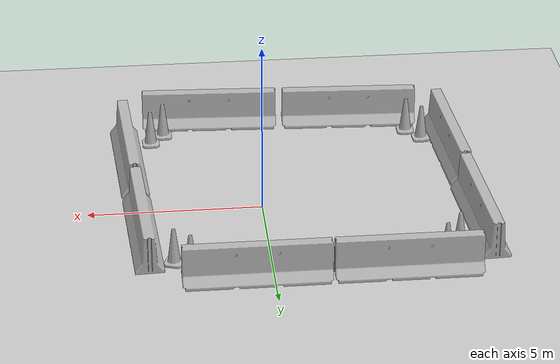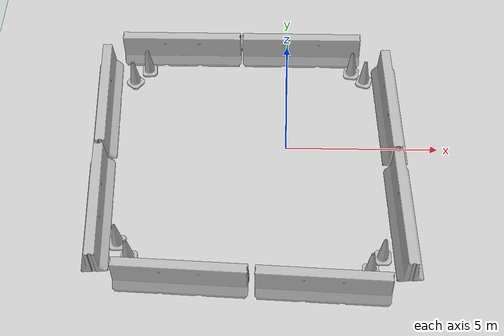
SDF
<sdf version="1.7">
 <world name="default">
  <light name="sun" type="directional">
   <pose>0 0 10 0 -0 0</pose>
   <diffuse>0.8 0.8 0.8 1</diffuse>
   <specular>0.2 0.2 0.2 1</specular>
   <attenuation>
    <range>1000</range>
    <constant>0.9</constant>
    <linear>0.01</linear>
    <quadratic>0.001</quadratic>
   </attenuation>
   <direction>-0.5 0.1 -0.9</direction>
   <spot><inner_angle>0</inner_angle><outer_angle>0</outer_angle><falloff>0</falloff></spot>
  </light>
  <model name="ground_plane">
   <static>1</static>
   <link name="link">
    <collision name="collision">
     <geometry><plane><normal>0 0 1</normal><size>100 100</size></plane></geometry>
     <surface><friction><ode><mu>100</mu><mu2>50</mu2></ode></friction></surface>
    </collision>
    <visual name="visual">
     <cast_shadows>0</cast_shadows>
     <geometry><plane><normal>0 0 1</normal><size>100 100</size></plane></geometry>
     <material>
      <script><uri>file://media/materials/scripts/gazebo.material</uri><name>Gazebo/Grey</name></script>
     </material>
    </visual>
   </link>
  </model>
  <gravity>0 0 -9.8</gravity>
  <magnetic_field>6e-06 2.3e-05 -4.2e-05</magnetic_field>
  <atmosphere type="adiabatic"/>
  <physics type="ode">
   <max_step_size>0.001</max_step_size>
   <real_time_factor>1</real_time_factor>
   <real_time_update_rate>1000</real_time_update_rate>
  </physics>
  <scene><ambient>0.4 0.4 0.4 1</ambient><background>0.7 0.7 0.7 1</background><shadows>1</shadows></scene>
  <spherical_coordinates>
   <surface_model>EARTH_WGS84</surface_model>
   <latitude_deg>0</latitude_deg>
   <longitude_deg>0</longitude_deg>
   <elevation>0</elevation>
   <heading_deg>0</heading_deg>
  </spherical_coordinates>
  <light name="user_point_light_0" type="point">
   <pose>0.094242 -0.019596 1 0 -0 0</pose>
   <diffuse>0.5 0.5 0.5 1</diffuse>
   <specular>0.1 0.1 0.1 1</specular>
   <attenuation>
    <range>20</range>
    <constant>0.5</constant>
    <linear>0.01</linear>
    <quadratic>0.001</quadratic>
   </attenuation>
   <cast_shadows>0</cast_shadows>
   <direction>0 0 -1</direction>
  </light>
  <light name="user_spot_light_0" type="spot">
   <pose>-6.28808 -5.6376 1 0 -0 0</pose>
   <diffuse>0.5 0.5 0.5 1</diffuse>
   <specular>0.1 0.1 0.1 1</specular>
   <direction>0 0 -1</direction>
   <attenuation>
    <range>20</range>
    <constant>0.5</constant>
    <linear>0.01</linear>
    <quadratic>0.001</quadratic>
   </attenuation>
   <cast_shadows>0</cast_shadows>
   <spot><inner_angle>0.6</inner_angle><outer_angle>1</outer_angle><falloff>1</falloff></spot>
  </light>
  <light name="user_spot_light_1" type="spot">
   <pose>-6.5416 6.58409 1 0 -0 0</pose>
   <diffuse>0.5 0.5 0.5 1</diffuse>
   <specular>0.1 0.1 0.1 1</specular>
   <direction>0 0 -1</direction>
   <attenuation>
    <range>20</range>
    <constant>0.5</constant>
    <linear>0.01</linear>
    <quadratic>0.001</quadratic>
   </attenuation>
   <cast_shadows>0</cast_shadows>
   <spot><inner_angle>0.6</inner_angle><outer_angle>1</outer_angle><falloff>1</falloff></spot>
  </light>
  <light name="user_spot_light_2" type="spot">
   <pose>6.39707 -6.50301 1 0 -0 0</pose>
   <diffuse>0.5 0.5 0.5 1</diffuse>
   <specular>0.1 0.1 0.1 1</specular>
   <direction>0 0 -1</direction>
   <attenuation>
    <range>20</range>
    <constant>0.5</constant>
    <linear>0.01</linear>
    <quadratic>0.001</quadratic>
   </attenuation>
   <cast_shadows>0</cast_shadows>
   <spot><inner_angle>0.6</inner_angle><outer_angle>1</outer_angle><falloff>1</falloff></spot>
  </light>
  <light name="user_spot_light_3" type="spot">
   <pose>6.43244 6.65197 1 0 -0 0</pose>
   <diffuse>0.5 0.5 0.5 1</diffuse>
   <specular>0.1 0.1 0.1 1</specular>
   <direction>0 0 -1</direction>
   <attenuation>
    <range>20</range>
    <constant>0.5</constant>
    <linear>0.01</linear>
    <quadratic>0.001</quadratic>
   </attenuation>
   <cast_shadows>0</cast_shadows>
   <spot><inner_angle>0.6</inner_angle><outer_angle>1</outer_angle><falloff>1</falloff></spot>
  </light>
  <model name="Construction Cone">
   <link name="link">
    <collision name="collision">
     <geometry>
      <mesh><scale>10 10 10</scale><uri>model://construction_cone/meshes/construction_cone.dae</uri></mesh>
     </geometry>
    </collision>
    <visual name="visual">
     <geometry>
      <mesh><scale>10 10 10</scale><uri>model://construction_cone/meshes/construction_cone.dae</uri></mesh>
     </geometry>
    </visual>
    <inertial>
     <inertia><ixx>1</ixx><ixy>0</ixy><ixz>0</ixz><iyy>1</iyy><iyz>0</iyz><izz>1</izz></inertia>
     <mass>1</mass>
    </inertial>
   </link>
   <pose>3.01749 -4.07828 -1e-05 0 -0 0.002593</pose>
  </model>
  <model name="Construction Cone_clone">
   <link name="link">
    <collision name="collision">
     <geometry>
      <mesh><scale>10 10 10</scale><uri>model://construction_cone/meshes/construction_cone.dae</uri></mesh>
     </geometry>
    </collision>
    <visual name="visual">
     <geometry>
      <mesh><scale>10 10 10</scale><uri>model://construction_cone/meshes/construction_cone.dae</uri></mesh>
     </geometry>
    </visual>
    <inertial>
     <inertia><ixx>1</ixx><ixy>0</ixy><ixz>0</ixz><iyy>1</iyy><iyz>0</iyz><izz>1</izz></inertia>
     <mass>1</mass>
    </inertial>
   </link>
   <pose>2.62272 -4.55524 -2e-06 -3e-06 -1e-06 -0.006142</pose>
  </model>
  <model name="Construction Cone_clone_0">
   <link name="link">
    <collision name="collision">
     <geometry>
      <mesh><scale>10 10 10</scale><uri>model://construction_cone/meshes/construction_cone.dae</uri></mesh>
     </geometry>
    </collision>
    <visual name="visual">
     <geometry>
      <mesh><scale>10 10 10</scale><uri>model://construction_cone/meshes/construction_cone.dae</uri></mesh>
     </geometry>
    </visual>
    <inertial>
     <inertia><ixx>1</ixx><ixy>0</ixy><ixz>0</ixz><iyy>1</iyy><iyz>0</iyz><izz>1</izz></inertia>
     <mass>1</mass>
    </inertial>
   </link>
   <pose>-5.24304 2.69499 -1e-05 -1e-06 -0 -0.682086</pose>
  </model>
  <model name="Construction Cone_clone_1">
   <link name="link">
    <collision name="collision">
     <geometry>
      <mesh><scale>10 10 10</scale><uri>model://construction_cone/meshes/construction_cone.dae</uri></mesh>
     </geometry>
    </collision>
    <visual name="visual">
     <geometry>
      <mesh><scale>10 10 10</scale><uri>model://construction_cone/meshes/construction_cone.dae</uri></mesh>
     </geometry>
    </visual>
    <inertial>
     <inertia><ixx>1</ixx><ixy>0</ixy><ixz>0</ixz><iyy>1</iyy><iyz>0</iyz><izz>1</izz></inertia>
     <mass>1</mass>
    </inertial>
   </link>
   <pose>-4.79812 3.21901 -0 0 0 -1.48874</pose>
  </model>
  <model name="Construction Cone_clone_2">
   <link name="link">
    <collision name="collision">
     <geometry>
      <mesh><scale>10 10 10</scale><uri>model://construction_cone/meshes/construction_cone.dae</uri></mesh>
     </geometry>
    </collision>
    <visual name="visual">
     <geometry>
      <mesh><scale>10 10 10</scale><uri>model://construction_cone/meshes/construction_cone.dae</uri></mesh>
     </geometry>
    </visual>
    <inertial>
     <inertia><ixx>1</ixx><ixy>0</ixy><ixz>0</ixz><iyy>1</iyy><iyz>0</iyz><izz>1</izz></inertia>
     <mass>1</mass>
    </inertial>
   </link>
   <pose>2.24008 3.21163 -0 0 0 -0.136669</pose>
  </model>
  <model name="Construction Cone_clone_3">
   <link name="link">
    <collision name="collision">
     <geometry>
      <mesh><scale>10 10 10</scale><uri>model://construction_cone/meshes/construction_cone.dae</uri></mesh>
     </geometry>
    </collision>
    <visual name="visual">
     <geometry>
      <mesh><scale>10 10 10</scale><uri>model://construction_cone/meshes/construction_cone.dae</uri></mesh>
     </geometry>
    </visual>
    <inertial>
     <inertia><ixx>1</ixx><ixy>0</ixy><ixz>0</ixz><iyy>1</iyy><iyz>0</iyz><izz>1</izz></inertia>
     <mass>1</mass>
    </inertial>
   </link>
   <pose>2.67523 2.83436 -0.000109 -4.3e-05 -0.000269 -1.8984</pose>
  </model>
  <model name="Construction Cone_clone_4">
   <link name="link">
    <collision name="collision">
     <geometry>
      <mesh><scale>10 10 10</scale><uri>model://construction_cone/meshes/construction_cone.dae</uri></mesh>
     </geometry>
    </collision>
    <visual name="visual">
     <geometry>
      <mesh><scale>10 10 10</scale><uri>model://construction_cone/meshes/construction_cone.dae</uri></mesh>
     </geometry>
    </visual>
    <inertial>
     <inertia><ixx>1</ixx><ixy>0</ixy><ixz>0</ixz><iyy>1</iyy><iyz>0</iyz><izz>1</izz></inertia>
     <mass>1</mass>
    </inertial>
   </link>
   <pose>-4.7522 -4.22259 -0 0 0 -0.003245</pose>
  </model>
  <model name="Construction Cone_clone_5">
   <link name="link">
    <collision name="collision">
     <geometry>
      <mesh><scale>10 10 10</scale><uri>model://construction_cone/meshes/construction_cone.dae</uri></mesh>
     </geometry>
    </collision>
    <visual name="visual">
     <geometry>
      <mesh><scale>10 10 10</scale><uri>model://construction_cone/meshes/construction_cone.dae</uri></mesh>
     </geometry>
    </visual>
    <inertial>
     <inertia><ixx>1</ixx><ixy>0</ixy><ixz>0</ixz><iyy>1</iyy><iyz>0</iyz><izz>1</izz></inertia>
     <mass>1</mass>
    </inertial>
   </link>
   <pose>-5.15103 -3.69883 -0.00127 -0.000387 -1.4e-05 0.053329</pose>
  </model>
  <model name="jersey_barrier">
   <static>1</static>
   <link name="link">
    <visual name="visual">
     <geometry><mesh><uri>model://jersey_barrier/meshes/jersey_barrier.dae</uri></mesh></geometry>
    </visual>
    <collision name="upright">
     <pose>0 0 0.5715 0 -0 0</pose>
     <geometry><box><size>4.06542 0.3063 1.143</size></box></geometry>
    </collision>
    <collision name="base">
     <pose>0 0 0.032258 0 -0 0</pose>
     <geometry><box><size>4.06542 0.8107 0.064516</size></box></geometry>
    </collision>
    <collision name="base2">
     <pose>0 0 0.1 0 -0 0</pose>
     <geometry><box><size>4.06542 0.65 0.1</size></box></geometry>
    </collision>
    <collision name="base3">
     <pose>0 0 0.2 0 -0 0</pose>
     <geometry><box><size>4.06542 0.5 0.1</size></box></geometry>
    </collision>
    <collision name="left-angle">
     <pose>0 -0.224 0.2401 0.9 -0 0</pose>
     <geometry><box><size>4.06542 0.5 0.064516</size></box></geometry>
    </collision>
    <collision name="right-angle">
     <pose>0 0.224 0.2401 -0.9 0 0</pose>
     <geometry><box><size>4.06542 0.5 0.064516</size></box></geometry>
    </collision>
   </link>
   <pose>0.483781 3.89402 0 0 -0 0</pose>
  </model>
  <model name="jersey_barrier_clone">
   <static>1</static>
   <link name="link">
    <visual name="visual">
     <geometry><mesh><uri>model://jersey_barrier/meshes/jersey_barrier.dae</uri></mesh></geometry>
    </visual>
    <collision name="upright">
     <pose>0 0 0.5715 0 -0 0</pose>
     <geometry><box><size>4.06542 0.3063 1.143</size></box></geometry>
    </collision>
    <collision name="base">
     <pose>0 0 0.032258 0 -0 0</pose>
     <geometry><box><size>4.06542 0.8107 0.064516</size></box></geometry>
    </collision>
    <collision name="base2">
     <pose>0 0 0.1 0 -0 0</pose>
     <geometry><box><size>4.06542 0.65 0.1</size></box></geometry>
    </collision>
    <collision name="base3">
     <pose>0 0 0.2 0 -0 0</pose>
     <geometry><box><size>4.06542 0.5 0.1</size></box></geometry>
    </collision>
    <collision name="left-angle">
     <pose>0 -0.224 0.2401 0.9 -0 0</pose>
     <geometry><box><size>4.06542 0.5 0.064516</size></box></geometry>
    </collision>
    <collision name="right-angle">
     <pose>0 0.224 0.2401 -0.9 0 0</pose>
     <geometry><box><size>4.06542 0.5 0.064516</size></box></geometry>
    </collision>
   </link>
   <pose>-3.64561 3.89008 0 0 -0 0</pose>
  </model>
  <model name="jersey_barrier_clone_0">
   <static>1</static>
   <link name="link">
    <visual name="visual">
     <geometry><mesh><uri>model://jersey_barrier/meshes/jersey_barrier.dae</uri></mesh></geometry>
    </visual>
    <collision name="upright">
     <pose>0 0 0.5715 0 -0 0</pose>
     <geometry><box><size>4.06542 0.3063 1.143</size></box></geometry>
    </collision>
    <collision name="base">
     <pose>0 0 0.032258 0 -0 0</pose>
     <geometry><box><size>4.06542 0.8107 0.064516</size></box></geometry>
    </collision>
    <collision name="base2">
     <pose>0 0 0.1 0 -0 0</pose>
     <geometry><box><size>4.06542 0.65 0.1</size></box></geometry>
    </collision>
    <collision name="base3">
     <pose>0 0 0.2 0 -0 0</pose>
     <geometry><box><size>4.06542 0.5 0.1</size></box></geometry>
    </collision>
    <collision name="left-angle">
     <pose>0 -0.224 0.2401 0.9 -0 0</pose>
     <geometry><box><size>4.06542 0.5 0.064516</size></box></geometry>
    </collision>
    <collision name="right-angle">
     <pose>0 0.224 0.2401 -0.9 0 0</pose>
     <geometry><box><size>4.06542 0.5 0.064516</size></box></geometry>
    </collision>
   </link>
   <pose>-6.0542 1.4383 0 0 0 -1.51543</pose>
  </model>
  <model name="jersey_barrier_clone_0_clone">
   <static>1</static>
   <link name="link">
    <visual name="visual">
     <geometry><mesh><uri>model://jersey_barrier/meshes/jersey_barrier.dae</uri></mesh></geometry>
    </visual>
    <collision name="upright">
     <pose>0 0 0.5715 0 -0 0</pose>
     <geometry><box><size>4.06542 0.3063 1.143</size></box></geometry>
    </collision>
    <collision name="base">
     <pose>0 0 0.032258 0 -0 0</pose>
     <geometry><box><size>4.06542 0.8107 0.064516</size></box></geometry>
    </collision>
    <collision name="base2">
     <pose>0 0 0.1 0 -0 0</pose>
     <geometry><box><size>4.06542 0.65 0.1</size></box></geometry>
    </collision>
    <collision name="base3">
     <pose>0 0 0.2 0 -0 0</pose>
     <geometry><box><size>4.06542 0.5 0.1</size></box></geometry>
    </collision>
    <collision name="left-angle">
     <pose>0 -0.224 0.2401 0.9 -0 0</pose>
     <geometry><box><size>4.06542 0.5 0.064516</size></box></geometry>
    </collision>
    <collision name="right-angle">
     <pose>0 0.224 0.2401 -0.9 0 0</pose>
     <geometry><box><size>4.06542 0.5 0.064516</size></box></geometry>
    </collision>
   </link>
   <pose>-5.86186 -2.70529 0 0 0 -1.51543</pose>
  </model>
  <model name="jersey_barrier_clone_0_clone_0">
   <static>1</static>
   <link name="link">
    <visual name="visual">
     <geometry><mesh><uri>model://jersey_barrier/meshes/jersey_barrier.dae</uri></mesh></geometry>
    </visual>
    <collision name="upright">
     <pose>0 0 0.5715 0 -0 0</pose>
     <geometry><box><size>4.06542 0.3063 1.143</size></box></geometry>
    </collision>
    <collision name="base">
     <pose>0 0 0.032258 0 -0 0</pose>
     <geometry><box><size>4.06542 0.8107 0.064516</size></box></geometry>
    </collision>
    <collision name="base2">
     <pose>0 0 0.1 0 -0 0</pose>
     <geometry><box><size>4.06542 0.65 0.1</size></box></geometry>
    </collision>
    <collision name="base3">
     <pose>0 0 0.2 0 -0 0</pose>
     <geometry><box><size>4.06542 0.5 0.1</size></box></geometry>
    </collision>
    <collision name="left-angle">
     <pose>0 -0.224 0.2401 0.9 -0 0</pose>
     <geometry><box><size>4.06542 0.5 0.064516</size></box></geometry>
    </collision>
    <collision name="right-angle">
     <pose>0 0.224 0.2401 -0.9 0 0</pose>
     <geometry><box><size>4.06542 0.5 0.064516</size></box></geometry>
    </collision>
   </link>
   <pose>-3.0889 -5.014 0 0 -0 3.09685</pose>
  </model>
  <model name="jersey_barrier_clone_0_clone_0_clone">
   <static>1</static>
   <link name="link">
    <visual name="visual">
     <geometry><mesh><uri>model://jersey_barrier/meshes/jersey_barrier.dae</uri></mesh></geometry>
    </visual>
    <collision name="upright">
     <pose>0 0 0.5715 0 -0 0</pose>
     <geometry><box><size>4.06542 0.3063 1.143</size></box></geometry>
    </collision>
    <collision name="base">
     <pose>0 0 0.032258 0 -0 0</pose>
     <geometry><box><size>4.06542 0.8107 0.064516</size></box></geometry>
    </collision>
    <collision name="base2">
     <pose>0 0 0.1 0 -0 0</pose>
     <geometry><box><size>4.06542 0.65 0.1</size></box></geometry>
    </collision>
    <collision name="base3">
     <pose>0 0 0.2 0 -0 0</pose>
     <geometry><box><size>4.06542 0.5 0.1</size></box></geometry>
    </collision>
    <collision name="left-angle">
     <pose>0 -0.224 0.2401 0.9 -0 0</pose>
     <geometry><box><size>4.06542 0.5 0.064516</size></box></geometry>
    </collision>
    <collision name="right-angle">
     <pose>0 0.224 0.2401 -0.9 0 0</pose>
     <geometry><box><size>4.06542 0.5 0.064516</size></box></geometry>
    </collision>
   </link>
   <pose>1.17705 -5.21121 0 0 -0 3.09685</pose>
  </model>
  <model name="jersey_barrier_clone_0_clone_0_clone_clone">
   <static>1</static>
   <link name="link">
    <visual name="visual">
     <geometry><mesh><uri>model://jersey_barrier/meshes/jersey_barrier.dae</uri></mesh></geometry>
    </visual>
    <collision name="upright">
     <pose>0 0 0.5715 0 -0 0</pose>
     <geometry><box><size>4.06542 0.3063 1.143</size></box></geometry>
    </collision>
    <collision name="base">
     <pose>0 0 0.032258 0 -0 0</pose>
     <geometry><box><size>4.06542 0.8107 0.064516</size></box></geometry>
    </collision>
    <collision name="base2">
     <pose>0 0 0.1 0 -0 0</pose>
     <geometry><box><size>4.06542 0.65 0.1</size></box></geometry>
    </collision>
    <collision name="base3">
     <pose>0 0 0.2 0 -0 0</pose>
     <geometry><box><size>4.06542 0.5 0.1</size></box></geometry>
    </collision>
    <collision name="left-angle">
     <pose>0 -0.224 0.2401 0.9 -0 0</pose>
     <geometry><box><size>4.06542 0.5 0.064516</size></box></geometry>
    </collision>
    <collision name="right-angle">
     <pose>0 0.224 0.2401 -0.9 0 0</pose>
     <geometry><box><size>4.06542 0.5 0.064516</size></box></geometry>
    </collision>
   </link>
   <pose>3.70066 -2.86557 0 0 -0 1.62797</pose>
  </model>
  <model name="jersey_barrier_clone_0_clone_0_clone_clone_clone">
   <static>1</static>
   <link name="link">
    <visual name="visual">
     <geometry><mesh><uri>model://jersey_barrier/meshes/jersey_barrier.dae</uri></mesh></geometry>
    </visual>
    <collision name="upright">
     <pose>0 0 0.5715 0 -0 0</pose>
     <geometry><box><size>4.06542 0.3063 1.143</size></box></geometry>
    </collision>
    <collision name="base">
     <pose>0 0 0.032258 0 -0 0</pose>
     <geometry><box><size>4.06542 0.8107 0.064516</size></box></geometry>
    </collision>
    <collision name="base2">
     <pose>0 0 0.1 0 -0 0</pose>
     <geometry><box><size>4.06542 0.65 0.1</size></box></geometry>
    </collision>
    <collision name="base3">
     <pose>0 0 0.2 0 -0 0</pose>
     <geometry><box><size>4.06542 0.5 0.1</size></box></geometry>
    </collision>
    <collision name="left-angle">
     <pose>0 -0.224 0.2401 0.9 -0 0</pose>
     <geometry><box><size>4.06542 0.5 0.064516</size></box></geometry>
    </collision>
    <collision name="right-angle">
     <pose>0 0.224 0.2401 -0.9 0 0</pose>
     <geometry><box><size>4.06542 0.5 0.064516</size></box></geometry>
    </collision>
   </link>
   <pose>3.46304 1.33778 0 0 -0 1.62797</pose>
  </model>
 </world>
</sdf>
